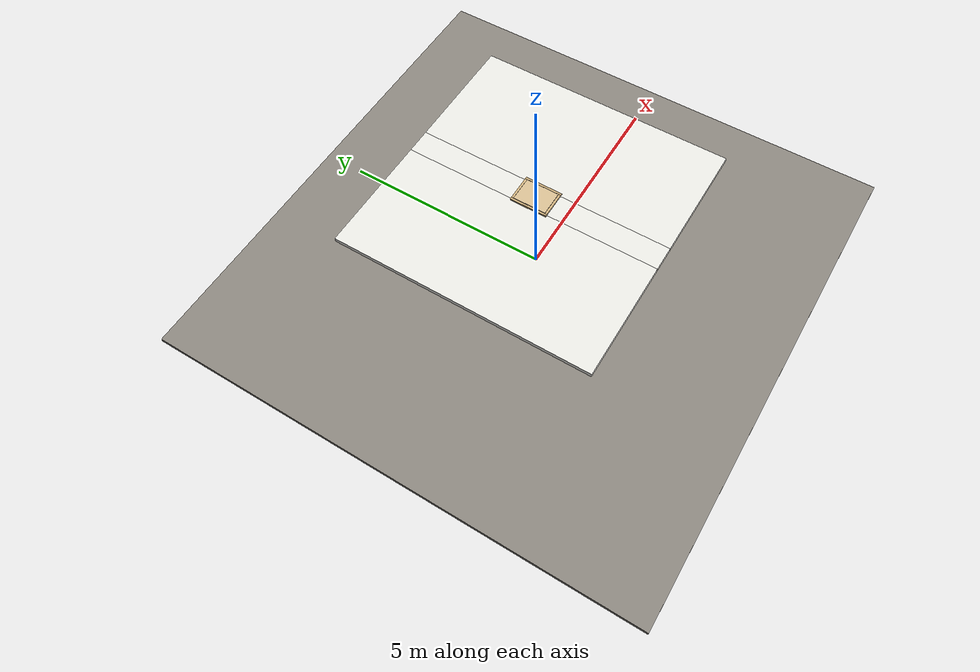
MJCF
<?xml version="1.0" ?>
<mujoco model="db0121_hatch_ceiling_minimal">
  <compiler angle="radian" meshdir="../../hardware" texturedir="../../textures" autolimits="true" inertiafromgeom="false"/>
  <option timestep="0.002" integrator="implicitfast" cone="elliptic" impratio="10" noslip_iterations="3">
    <flag multiccd="enable"/>
  </option>
  <size memory="16M"/>
  <default>
    <geom condim="4" solref="0.005 1" solimp="0.95 0.99 0.001"/>
    <joint solreflimit="0.005 1" solimplimit="0.95 0.99 0.001"/>
    <tendon solreflimit="0.005 1"/>
    <equality solref="0.002 1"/>
  </default>
  <visual>
    <headlight ambient="0.4 0.4 0.4" diffuse="0.7 0.7 0.7" specular="0.2 0.2 0.2"/>
    <quality shadowsize="4096"/>
    <map znear="0.01" zfar="60"/>
  </visual>
  <asset>
    <material name="mat_floor" rgba="0.55 0.53 0.5 1" specular="0.2" shininess="0.15" reflectance="0"/>
    <material name="mat_wall" rgba="0.78 0.76 0.7 1" specular="0.2" shininess="0.1" reflectance="0"/>
    <material name="mat_ceiling" rgba="0.92 0.92 0.9 1" specular="0.2" shininess="0.1" reflectance="0"/>
    <material name="mat_room_wall" rgba="0.86 0.85 0.82 1" specular="0.2" shininess="0.1" reflectance="0"/>
    <material name="mat_frame" rgba="0.82 0.7 0.5 1" specular="0.2" shininess="0.45" reflectance="0"/>
    <material name="mat_leaf" rgba="0.85 0.75 0.58 1" specular="0.2" shininess="0.4" reflectance="0"/>
    <material name="mat_hinge" rgba="0.65 0.66 0.68 1" specular="0.74" shininess="0.5" reflectance="0.36"/>
    <material name="mat_rivet" rgba="0.55 0.56 0.58 1" specular="0.8" shininess="0.55" reflectance="0.4"/>
    <material name="mat_op_steel" rgba="0.55 0.56 0.58 1" specular="0.8" shininess="0.55" reflectance="0.4"/>
    <material name="mat_strut" rgba="0.75 0.76 0.77 1" specular="0.8" shininess="0.65" reflectance="0.4"/>
    <texture name="skybox" type="skybox" builtin="gradient" rgb1="0.6 0.7 0.85" rgb2="0.9 0.92 0.95" width="256" height="256"/>
  </asset>
  <worldbody>
    <light name="sun" pos="1.5 -2.5 4" dir="-0.3 0.5 -0.8" directional="true" diffuse="0.8 0.8 0.8" specular="0.3 0.3 0.3" castshadow="true"/>
    <light name="fill" pos="-1.5 2.5 3" dir="0.3 -0.5 -0.7" directional="true" diffuse="0.35 0.35 0.4" castshadow="false"/>
    <camera name="robot_view" pos="0 -1.875 3.31" xyaxes="1 0 0 0 0.26963 0.962964" fovy="52"/>
    <camera name="far_view" pos="0 1.875 3.31" xyaxes="-1 0 0 0 -0.26963 0.962964" fovy="52"/>
    <camera name="iso" pos="1.425 -1.575 3.61" xyaxes="0.741536 0.670913 0 -0.242917 0.268487 0.932151" fovy="46"/>
    <camera name="detail_handle" pos="0.65 -0.55 1.55" xyaxes="0.843661 0.536875 0 0.426006 -0.669439 0.608581" fovy="38"/>
    <geom name="floor" type="box" size="6 6 0.05" pos="0 0 -0.05" material="mat_floor" group="0" contype="1" conaffinity="1" friction="0.8 0.005 0.0001" density="2400"/>
    <geom name="ceil_a" type="box" size="1.3575 3 0.05" pos="-1.6425 0 2.35" material="mat_ceiling" group="0" contype="1" conaffinity="1" friction="0.6 0.005 0.0001" density="600"/>
    <geom name="ceil_b" type="box" size="1.3575 3 0.05" pos="1.6425 0 2.35" material="mat_ceiling" group="0" contype="1" conaffinity="1" friction="0.6 0.005 0.0001" density="600"/>
    <geom name="ceil_c" type="box" size="0.285 1.3075 0.05" pos="0 -1.6925 2.35" material="mat_ceiling" group="0" contype="1" conaffinity="1" friction="0.6 0.005 0.0001" density="600"/>
    <geom name="ceil_d" type="box" size="0.285 1.3075 0.05" pos="0 1.6925 2.35" material="mat_ceiling" group="0" contype="1" conaffinity="1" friction="0.6 0.005 0.0001" density="600"/>
    <geom name="curb_l" type="box" size="0.025 0.435 0.02" pos="-0.31 0 2.42" material="mat_frame" group="0" contype="1" conaffinity="1" friction="0.6 0.005 0.0001" density="7850"/>
    <geom name="curb_r" type="box" size="0.025 0.435 0.02" pos="0.31 0 2.42" material="mat_frame" group="0" contype="1" conaffinity="1" friction="0.6 0.005 0.0001" density="7850"/>
    <geom name="curb_n" type="box" size="0.285 0.025 0.02" pos="0 -0.41 2.42" material="mat_frame" group="0" contype="1" conaffinity="1" friction="0.6 0.005 0.0001" density="7850"/>
    <geom name="curb_f" type="box" size="0.285 0.025 0.02" pos="0 0.41 2.42" material="mat_frame" group="0" contype="1" conaffinity="1" friction="0.6 0.005 0.0001" density="7850"/>
    <site name="approach_point" pos="0 -1.5 0" quat="1 0 0 0" size="0.05" rgba="0.2 0.9 0.2 0.5" group="4"/>
    <site name="goal_point" pos="0 0 2.9" quat="1 0 0 0" size="0.05" rgba="0.2 0.9 0.2 0.5" group="4"/>
    <site name="door_plane_center" pos="0 0 2.4" quat="1 0 0 0" size="0.02" rgba="0.2 0.9 0.2 0.5" group="4"/>
    <body name="hatch" pos="0 0.385 2.44">
      <inertial pos="0 -0.385 0" mass="4.916464" quat="0.707107 0 0 -0.707107" diaginertia="0.12854259 0.237951941 0.366376536"/>
      <joint name="hatch_hinge" type="hinge" axis="-1 0 0" pos="0 0.01 0" limited="true" range="0 1.396263" damping="30.513498" frictionloss="0.416569" stiffness="16.875" springref="-3.333333" armature="0.02"/>
      <geom name="hatch_slab" type="box" size="0.28 0.381 0.006" pos="0 -0.385 0" material="mat_leaf" group="0" contype="1" conaffinity="1" friction="0.6 0.005 0.0001" density="1"/>
    </body>
  </worldbody>
  <sensor>
    <jointpos name="hatch_hinge_pos" joint="hatch_hinge"/>
    <jointvel name="hatch_hinge_vel" joint="hatch_hinge"/>
  </sensor>
</mujoco>
